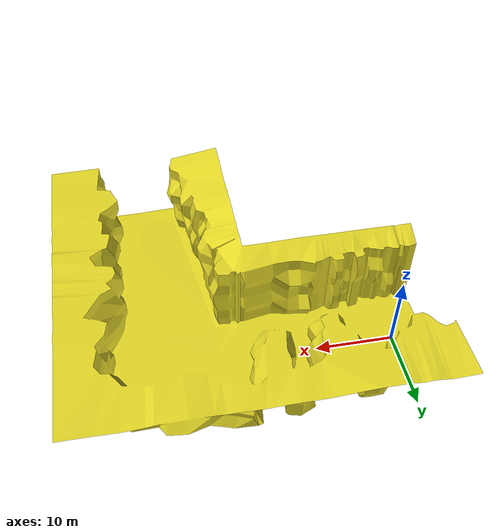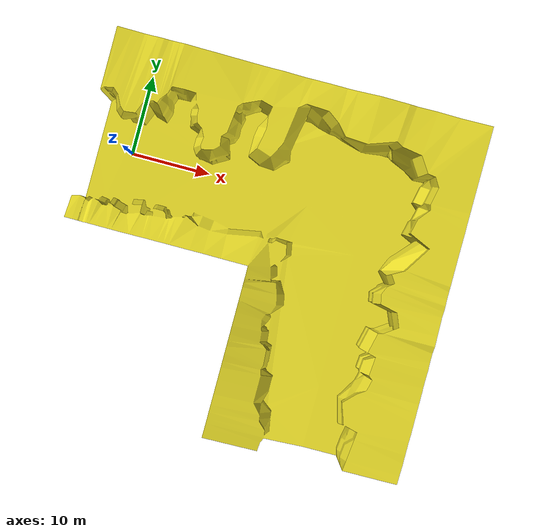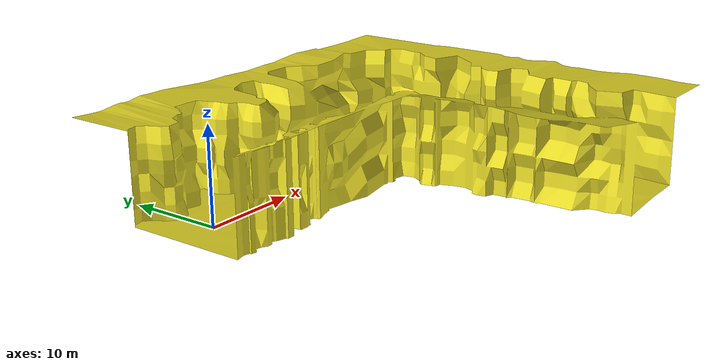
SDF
<?xml version="1.0" ?>
<sdf version="1.4">
    <world name="RockWorld">
        <include>
            <uri>model://sun</uri>
        </include>

        <include>
            <name>rock_wall</name>
            <pose>20 -5 0.15  0 0 0 </pose>
            <uri>model://rock_wall</uri>
        </include>

    </world>
</sdf>

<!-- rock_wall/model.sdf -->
<sdf version="1.5">
  <model name="buoy_a5">
    <static>true</static>
    <link name="link">
      <pose>0 0 0 0 0 0</pose>
      <collision name="collision">
        <geometry>
          <mesh>
            <uri>model://rock_wall/meshes/rock_wall.dae</uri>
          </mesh>
        </geometry>
      </collision>
      <visual name="visual">
        <cast_shadows>false</cast_shadows>
        <geometry>
          <mesh>
            <uri>model://rock_wall/meshes/rock_wall.dae</uri>
          </mesh>
        </geometry>
        <material>
          <script>
            <uri>file://media/materials/scripts/gazebo.material</uri>
            <name>Gazebo/DarkYellow</name>
          </script>
        </material>
      </visual>
      <inertial>
      	<origin
        xyz="0 0 0"
        rpy="0 0 0" />
        <mass>10</mass>
        <inertia>
          <ixx>10</ixx>
          <ixy>0</ixy>
          <ixz>0</ixz>
          <iyy>10</iyy>
          <iyz>0</iyz>
          <izz>10</izz>
        </inertia>
      </inertial>
    </link>
  </model>
</sdf>
